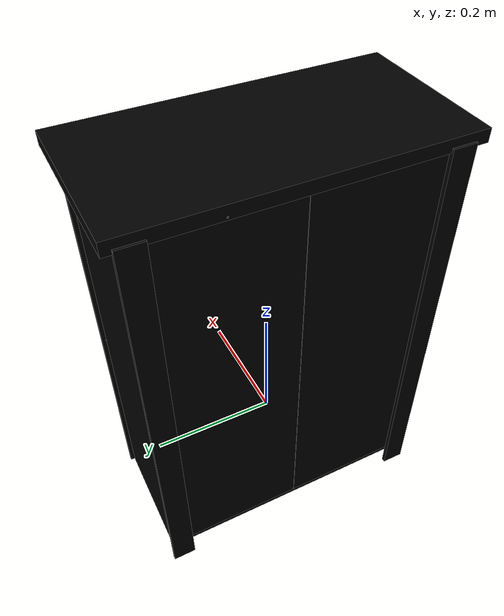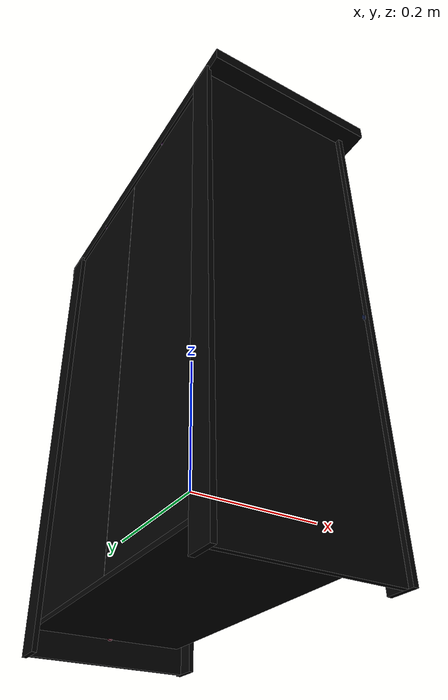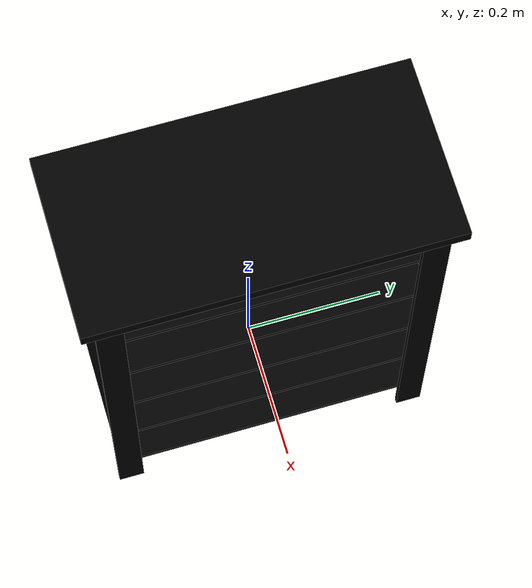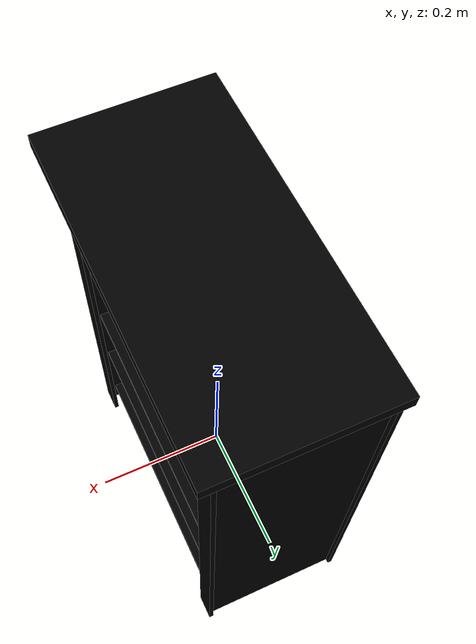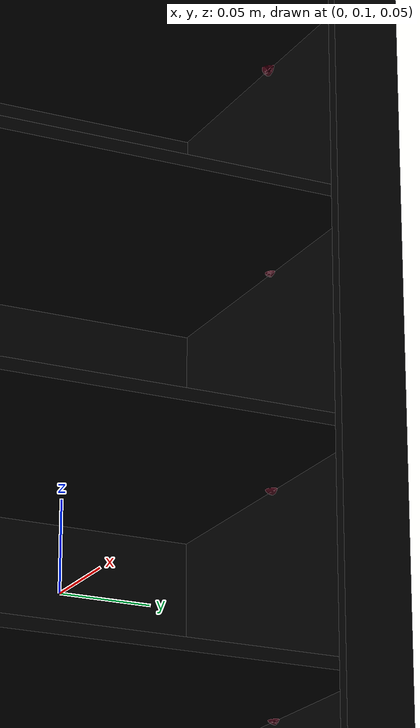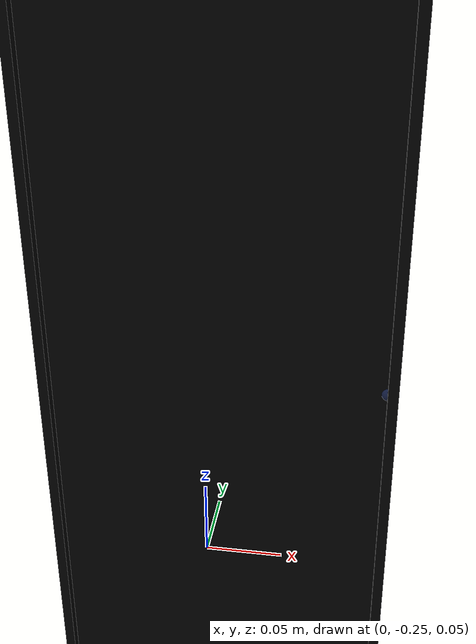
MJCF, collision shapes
<mujoco model="bookcase_grevback_0484">
    <asset>
        <mesh file="bookcase_grevback_0484/0.stl" name="part0" scale="0.0002664 0.0002664 0.0002664"/>
        <mesh file="bookcase_grevback_0484/9.stl" name="part9" scale="0.0002664 0.0002664 0.0002664"/>
        <mesh file="bookcase_grevback_0484/8.stl" name="part8" scale="0.0002664 0.0002664 0.0002664"/>
        <mesh file="bookcase_grevback_0484/7.stl" name="part7" scale="0.0002664 0.0002664 0.0002664"/>
        <mesh file="bookcase_grevback_0484/6.stl" name="part6" scale="0.0002664 0.0002664 0.0002664"/>
        <mesh file="bookcase_grevback_0484/5.stl" name="part5" scale="0.0002664 0.0002664 0.0002664"/>
        <mesh file="bookcase_grevback_0484/4.stl" name="part4" scale="0.0002664 0.0002664 0.0002664"/>
        <mesh file="bookcase_grevback_0484/3.stl" name="part3" scale="0.0002664 0.0002664 0.0002664"/>
        <mesh file="bookcase_grevback_0484/2.stl" name="part2" scale="0.0002664 0.0002664 0.0002664"/>
        <mesh file="bookcase_grevback_0484/13.stl" name="part13" scale="0.0002664 0.0002664 0.0002664"/>
        <mesh file="bookcase_grevback_0484/12.stl" name="part12" scale="0.0002664 0.0002664 0.0002664"/>
        <mesh file="bookcase_grevback_0484/11.stl" name="part11" scale="0.0002664 0.0002664 0.0002664"/>
        <mesh file="bookcase_grevback_0484/10.stl" name="part10" scale="0.0002664 0.0002664 0.0002664"/>
        <mesh file="bookcase_grevback_0484/1.stl" name="part1" scale="0.0002664 0.0002664 0.0002664"/>
    </asset>
    <equality>
        <weld active="false" body1="12_part12" body2="5_part5" solimp="1 1 0.5" solref="0.01 0.3"/>
        <weld active="false" body1="11_part11" body2="4_part4" solimp="1 1 0.5" solref="0.01 0.3"/>
        <weld active="false" body1="11_part11" body2="3_part3" solimp="1 1 0.5" solref="0.01 0.3"/>
        <weld active="false" body1="12_part12" body2="4_part4" solimp="1 1 0.5" solref="0.01 0.3"/>
        <weld active="false" body1="12_part12" body2="3_part3" solimp="1 1 0.5" solref="0.01 0.3"/>
        <weld active="false" body1="9_part9" body2="5_part5" solimp="1 1 0.5" solref="0.01 0.3"/>
        <weld active="false" body1="8_part8" body2="5_part5" solimp="1 1 0.5" solref="0.01 0.3"/>
        <weld active="false" body1="6_part6" body2="11_part11" solimp="1 1 0.5" solref="0.01 0.3"/>
        <weld active="false" body1="6_part6" body2="12_part12" solimp="1 1 0.5" solref="0.01 0.3"/>
        <weld active="false" body1="7_part3" body2="11_part11" solimp="1 1 0.5" solref="0.01 0.3"/>
        <weld active="false" body1="7_part3" body2="12_part12" solimp="1 1 0.5" solref="0.01 0.3"/>
        <weld active="false" body1="10_part10" body2="11_part11" solimp="1 1 0.5" solref="0.01 0.3"/>
        <weld active="false" body1="10_part10" body2="12_part12" solimp="1 1 0.5" solref="0.01 0.3"/>
        <weld active="false" body1="0_part0" body2="11_part11" solimp="1 1 0.5" solref="0.01 0.3"/>
        <weld active="false" body1="0_part0" body2="12_part12" solimp="1 1 0.5" solref="0.01 0.3"/>
        <weld active="false" body1="1_part1" body2="11_part11" solimp="1 1 0.5" solref="0.01 0.3"/>
        <weld active="false" body1="1_part1" body2="12_part12" solimp="1 1 0.5" solref="0.01 0.3"/>
        <weld active="false" body1="2_part2" body2="9_part9" solimp="1 1 0.5" solref="0.01 0.3"/>
        <weld active="false" body1="2_part2" body2="8_part8" solimp="1 1 0.5" solref="0.01 0.3"/>
        <weld active="false" body1="13_part13" body2="9_part9" solimp="1 1 0.5" solref="0.01 0.3"/>
        <weld active="false" body1="13_part13" body2="8_part8" solimp="1 1 0.5" solref="0.01 0.3"/>
        <weld active="false" body1="11_part11" body2="5_part5" solimp="1 1 0.5" solref="0.01 0.3"/>
    </equality>
    <worldbody>
        <body name="0_part0" pos="-0.0 0.0 5.328000000000001e-11" quat="1 0 0 0">
            <geom conaffinity="0" contype="0" density="0" mesh="part0" name="0_part0_mesh" pos="0.0 0.0 0.0"
                  rgba="0.82 0.71 0.55 1" type="mesh"/>
            <site name="0_part0_horizontal_radius_site" pos="-0.0 0.0 5.328000000000001e-11" quat="1 0 0 0"
                  rgba="0 0 0 0" size="0.005328"/>
            <site name="0_part0_top_site" pos="0.0 0.0 0.00338328527472" quat="1 0 0 0" rgba="0 0 0 0" size="0.005328"/>
            <site name="0_part0_bottom_site" pos="0.0 0.0 -0.0033832851948000005" quat="1 0 0 0" rgba="0 0 0 0"
                  size="0.005328"/>
            <site name="0_part0_corner_site8" pos="-0.10674248400000003 0.22245066650016004 0.00338328527472"
                  quat="1 0 0 0" rgba="0 0 0 0" size="0.005328"/>
            <site name="0_part0_corner_site7" pos="0.10674248400000003 0.22245066650016004 0.00338328527472"
                  quat="1 0 0 0" rgba="0 0 0 0" size="0.005328"/>
            <site name="0_part0_corner_site6" pos="0.10674248400000003 -0.22245066650016004 0.00338328527472"
                  quat="1 0 0 0" rgba="0 0 0 0" size="0.005328"/>
            <site name="0_part0_corner_site5" pos="-0.10674248400000003 -0.22245066650016004 0.00338328527472"
                  quat="1 0 0 0" rgba="0 0 0 0" size="0.005328"/>
            <site name="0_part0_corner_site4" pos="-0.10674248400000003 0.22245066650016004 -0.0033832851948000005"
                  quat="1 0 0 0" rgba="0 0 0 0" size="0.005328"/>
            <site name="0_part0_corner_site3" pos="0.10674248400000003 0.22245066650016004 -0.0033832851948000005"
                  quat="1 0 0 0" rgba="0 0 0 0" size="0.005328"/>
            <site name="0_part0_corner_site2" pos="0.10674248400000003 -0.22245066650016004 -0.0033832851948000005"
                  quat="1 0 0 0" rgba="0 0 0 0" size="0.005328"/>
            <site name="0_part0_corner_site1" pos="-0.10674248400000003 -0.22245066650016004 -0.0033832851948000005"
                  quat="1 0 0 0" rgba="0 0 0 0" size="0.005328"/>
            <geom density="50" name="noviz_collision_0_part0_0" pos="0.0 -1.3320000000000003e-08 -5.328000000000001e-09"
                  quat="1 0 0 0" rgba="0 0 0 0" size="0.10674248400000003 0.22245066000000002 0.0033832800000000007"
                  solref="0.001 1" type="box"/>
            <site name="shelf-wall,0,180,conn_site1"
                  pos="0.0013533120000000002 -0.22276368000000005 -0.0013852800000000002" quat="0.7071067 0.7071068 0 0"
                  rgba="0.9019 0.0980 0.2941 0.3" size="0.005328"/>
            <site name="shelf-wall,0,180,conn_site2" pos="0.0013533120000000002 0.22239072000000004 -0.0002664"
                  quat="0.7071067 -0.7071068 0 0" rgba="0.9019 0.0980 0.2941 0.3" size="0.005328"/>
        </body>
        <body name="13_part13" pos="-0.11147907600000001 -0.21737574650016 0.17187061880520002" quat="1 0 0 0">
            <geom conaffinity="0" contype="0" density="0" mesh="part9" name="13_part13_mesh" pos="0.0 0.0 0.0"
                  rgba="0.82 0.71 0.55 1" type="mesh"/>
            <site name="13_part13_horizontal_radius_site" pos="0.0 3.996e-10 0.0" quat="1 0 0 0" rgba="0 0 0 0"
                  size="0.005328"/>
            <site name="13_part13_top_site" pos="0.0 3.996e-10 0.338328" quat="1 0 0 0" rgba="0 0 0 0" size="0.005328"/>
            <site name="13_part13_bottom_site" pos="0.0 3.996e-10 -0.338328" quat="1 0 0 0" rgba="0 0 0 0"
                  size="0.005328"/>
            <site name="13_part13_corner_site8" pos="-0.0033832800000000007 0.018608040399600005 0.338328"
                  quat="1 0 0 0" rgba="0 0 0 0" size="0.005328"/>
            <site name="13_part13_corner_site7" pos="0.0033832800000000007 0.018608040399600005 0.338328" quat="1 0 0 0"
                  rgba="0 0 0 0" size="0.005328"/>
            <site name="13_part13_corner_site6" pos="0.0033832800000000007 -0.0186080396004 0.338328" quat="1 0 0 0"
                  rgba="0 0 0 0" size="0.005328"/>
            <site name="13_part13_corner_site5" pos="-0.0033832800000000007 -0.0186080396004 0.338328" quat="1 0 0 0"
                  rgba="0 0 0 0" size="0.005328"/>
            <site name="13_part13_corner_site4" pos="-0.0033832800000000007 0.018608040399600005 -0.338328"
                  quat="1 0 0 0" rgba="0 0 0 0" size="0.005328"/>
            <site name="13_part13_corner_site3" pos="0.0033832800000000007 0.018608040399600005 -0.338328"
                  quat="1 0 0 0" rgba="0 0 0 0" size="0.005328"/>
            <site name="13_part13_corner_site2" pos="0.0033832800000000007 -0.0186080396004 -0.338328" quat="1 0 0 0"
                  rgba="0 0 0 0" size="0.005328"/>
            <site name="13_part13_corner_site1" pos="-0.0033832800000000007 -0.0186080396004 -0.338328" quat="1 0 0 0"
                  rgba="0 0 0 0" size="0.005328"/>
            <geom density="50" name="noviz_collision_13_part13_0" pos="0.0 0.0 0.0" quat="1 0 0 0" rgba="0 0 0 0"
                  size="0.003383282664000001 0.018608034672000003 0.338328" solref="0.001 1" type="box"/>
            <site name="sideback-back,0,conn_site2"
                  pos="0.0023349906720000002 0.00025975065600000003 1.5984000000000003e-08"
                  quat="0.7071067 0 -0.7071068 0" rgba="0.2352 0.7058 0.2941 0.3" size="0.005328"/>
        </body>
        <body name="12_part12" pos="0.0027066240000000004 -0.22583394671328005 0.17187061880520002" quat="1 0 0 0">
            <geom conaffinity="0" contype="0" density="0" mesh="part8" name="12_part12_mesh" pos="0.0 0.0 0.0"
                  rgba="0.82 0.71 0.55 1" type="mesh"/>
            <site name="12_part12_horizontal_radius_site" pos="5.328000000000001e-11 0.0 0.0" quat="1 0 0 0"
                  rgba="0 0 0 0" size="0.005328"/>
            <site name="12_part12_top_site" pos="5.328000000000001e-11 0.0 0.338328" quat="1 0 0 0" rgba="0 0 0 0"
                  size="0.005328"/>
            <site name="12_part12_bottom_site" pos="5.328000000000001e-11 0.0 -0.338328" quat="1 0 0 0" rgba="0 0 0 0"
                  size="0.005328"/>
            <site name="12_part12_corner_site8" pos="-0.11080241994672002 0.0033832802131200006 0.338328" quat="1 0 0 0"
                  rgba="0 0 0 0" size="0.005328"/>
            <site name="12_part12_corner_site7" pos="0.11080242005328 0.0033832802131200006 0.338328" quat="1 0 0 0"
                  rgba="0 0 0 0" size="0.005328"/>
            <site name="12_part12_corner_site6" pos="0.11080242005328 -0.0033832802131200006 0.338328" quat="1 0 0 0"
                  rgba="0 0 0 0" size="0.005328"/>
            <site name="12_part12_corner_site5" pos="-0.11080241994672002 -0.0033832802131200006 0.338328"
                  quat="1 0 0 0" rgba="0 0 0 0" size="0.005328"/>
            <site name="12_part12_corner_site4" pos="-0.11080241994672002 0.0033832802131200006 -0.338328"
                  quat="1 0 0 0" rgba="0 0 0 0" size="0.005328"/>
            <site name="12_part12_corner_site3" pos="0.11080242005328 0.0033832802131200006 -0.338328" quat="1 0 0 0"
                  rgba="0 0 0 0" size="0.005328"/>
            <site name="12_part12_corner_site2" pos="0.11080242005328 -0.0033832802131200006 -0.338328" quat="1 0 0 0"
                  rgba="0 0 0 0" size="0.005328"/>
            <site name="12_part12_corner_site1" pos="-0.11080241994672002 -0.0033832802131200006 -0.338328"
                  quat="1 0 0 0" rgba="0 0 0 0" size="0.005328"/>
            <geom density="50" name="noviz_collision_12_part12_0" pos="0.0 0.0 0.0" quat="1 0 0 0" rgba="0 0 0 0"
                  size="0.11080242000000003 0.003383282664000001 0.338328" solref="0.001 1" type="box"/>
            <site name="wallleft-topleft,0,conn_site1"
                  pos="0.005074917336000001 -0.0021245346720000008 0.3384984960000001" quat="1 0 0 0"
                  rgba="1.0 0.8823 0.0980 0.3" size="0.005328"/>
            <site name="wall-shelf,0,180,conn_site5"
                  pos="-0.0013533120000000002 0.0032833826640000004 0.20428617600000007" quat="0.7071067 0.7071068 0 0"
                  rgba="0.9019 0.0980 0.2941 0.3" size="0.005328"/>
            <site name="wall-shelf,0,180,conn_site4" pos="-0.0013533120000000002 0.003336665328 0.079610976"
                  quat="0.7071067 0.7071068 0 0" rgba="0.9019 0.0980 0.2941 0.3" size="0.005328"/>
            <site name="wall-shelf,0,180,conn_site3"
                  pos="-0.0013533120000000002 0.0032833826640000004 -0.04639622400000001" quat="0.7071067 0.7071068 0 0"
                  rgba="0.9019 0.0980 0.2941 0.3" size="0.005328"/>
            <site name="wall-shelf,0,180,conn_site2"
                  pos="-0.0013533120000000002 0.0030702653280000004 -0.17325590400000002" quat="0.7071067 0.7071068 0 0"
                  rgba="0.9019 0.0980 0.2941 0.3" size="0.005328"/>
            <site name="wall-shelf,0,180,conn_site1"
                  pos="-0.0016916400000000003 0.0032833826640000004 -0.30147422400000007" quat="0.7071067 0.7071068 0 0"
                  rgba="0.9019 0.0980 0.2941 0.3" size="0.005328"/>
            <site name="wall-front,0,180,conn_site2"
                  pos="0.11155233600000002 -0.0006060493440000001 -0.0033832506960000002" quat="0.7071067 0 0.7071068 0"
                  rgba="0.2627 0.3882 0.8470 0.3" size="0.005328"/>
        </body>
        <body name="11_part11" pos="0.0027066240000000004 0.22583393349984004 0.17187061880520002" quat="1 0 0 0">
            <geom conaffinity="0" contype="0" density="0" mesh="part7" name="11_part11_mesh" pos="0.0 0.0 0.0"
                  rgba="0.82 0.71 0.55 1" type="mesh"/>
            <site name="11_part11_horizontal_radius_site" pos="5.328000000000001e-11 -0.0 0.0" quat="1 0 0 0"
                  rgba="0 0 0 0" size="0.005328"/>
            <site name="11_part11_top_site" pos="5.328000000000001e-11 0.0 0.338328" quat="1 0 0 0" rgba="0 0 0 0"
                  size="0.005328"/>
            <site name="11_part11_bottom_site" pos="5.328000000000001e-11 0.0 -0.338328" quat="1 0 0 0" rgba="0 0 0 0"
                  size="0.005328"/>
            <site name="11_part11_corner_site8" pos="-0.11080241994672002 0.0033832800000000007 0.338328" quat="1 0 0 0"
                  rgba="0 0 0 0" size="0.005328"/>
            <site name="11_part11_corner_site7" pos="0.11080242005328 0.0033832800000000007 0.338328" quat="1 0 0 0"
                  rgba="0 0 0 0" size="0.005328"/>
            <site name="11_part11_corner_site6" pos="0.11080242005328 -0.0033832800000000007 0.338328" quat="1 0 0 0"
                  rgba="0 0 0 0" size="0.005328"/>
            <site name="11_part11_corner_site5" pos="-0.11080241994672002 -0.0033832800000000007 0.338328"
                  quat="1 0 0 0" rgba="0 0 0 0" size="0.005328"/>
            <site name="11_part11_corner_site4" pos="-0.11080241994672002 0.0033832800000000007 -0.338328"
                  quat="1 0 0 0" rgba="0 0 0 0" size="0.005328"/>
            <site name="11_part11_corner_site3" pos="0.11080242005328 0.0033832800000000007 -0.338328" quat="1 0 0 0"
                  rgba="0 0 0 0" size="0.005328"/>
            <site name="11_part11_corner_site2" pos="0.11080242005328 -0.0033832800000000007 -0.338328" quat="1 0 0 0"
                  rgba="0 0 0 0" size="0.005328"/>
            <site name="11_part11_corner_site1" pos="-0.11080241994672002 -0.0033832800000000007 -0.338328"
                  quat="1 0 0 0" rgba="0 0 0 0" size="0.005328"/>
            <geom density="50" name="noviz_collision_11_part11_0" pos="0.0 0.0 0.0" quat="1 0 0 0" rgba="0 0 0 0"
                  size="0.11080242000000003 0.003383282664000001 0.338328" solref="0.001 1" type="box"/>
            <site name="wallright-topright,0,conn_site1"
                  pos="0.005074917336000001 0.00017983332000000003 0.3381788160000001" quat="1 0 0 0"
                  rgba="0.9607 0.5098 0.1921 0.3" size="0.005328"/>
            <site name="wall-shelf,0,180,conn_site9" pos="-0.0013533120000000002 -0.0028038493440000005 0.203273856"
                  quat="0.7071067 -0.7071068 0 0" rgba="0.9019 0.0980 0.2941 0.3" size="0.005328"/>
            <site name="wall-shelf,0,180,conn_site8" pos="-0.0013533120000000002 -0.00328336668 0.079877376"
                  quat="0.7071067 -0.7071068 0 0" rgba="0.9019 0.0980 0.2941 0.3" size="0.005328"/>
            <site name="wall-shelf,0,180,conn_site7"
                  pos="-0.0013533120000000002 -0.003603049344000001 -0.04655606400000001"
                  quat="0.7071067 -0.7071068 0 0" rgba="0.9019 0.0980 0.2941 0.3" size="0.005328"/>
            <site name="wall-shelf,0,180,conn_site6" pos="-0.0013533120000000002 -0.003443217336 -0.172137024"
                  quat="0.7071067 -0.7071068 0 0" rgba="0.9019 0.0980 0.2941 0.3" size="0.005328"/>
            <site name="wall-shelf,0,180,conn_site10"
                  pos="-0.0016916400000000003 -0.0026973000000000006 -0.30131438400000005"
                  quat="0.7071067 -0.7071068 0 0" rgba="0.9019 0.0980 0.2941 0.3" size="0.005328"/>
            <site name="wall-front,0,180,conn_site1" pos="0.11149905600000001 -0.000193134672 -0.0033832506960000002"
                  quat="0.7071067 0 0.7071068 0" rgba="0.2627 0.3882 0.8470 0.3" size="0.005328"/>
        </body>
        <body name="10_part10" pos="-0.00067665682584 0.0 -0.1292413011948" quat="1 0 0 0">
            <geom conaffinity="0" contype="0" density="0" mesh="part6" name="10_part10_mesh" pos="0.0 0.0 0.0"
                  rgba="0.82 0.71 0.55 1" type="mesh"/>
            <site name="10_part10_horizontal_radius_site" pos="-7.992e-10 0.0 0.0" quat="1 0 0 0" rgba="0 0 0 0"
                  size="0.005328"/>
            <site name="10_part10_top_site" pos="-7.725600000000001e-10 0.0 0.0033832800000000007" quat="1 0 0 0"
                  rgba="0 0 0 0" size="0.005328"/>
            <site name="10_part10_bottom_site" pos="-7.725600000000001e-10 0.0 -0.0033832800000000007" quat="1 0 0 0"
                  rgba="0 0 0 0" size="0.005328"/>
            <site name="10_part10_corner_site8" pos="-0.10741914162504002 0.22245066650016004 0.0033832800000000007"
                  quat="1 0 0 0" rgba="0 0 0 0" size="0.005328"/>
            <site name="10_part10_corner_site7" pos="0.10741914005328002 0.22245066650016004 0.0033832800000000007"
                  quat="1 0 0 0" rgba="0 0 0 0" size="0.005328"/>
            <site name="10_part10_corner_site6" pos="0.10741914005328002 -0.22245066650016004 0.0033832800000000007"
                  quat="1 0 0 0" rgba="0 0 0 0" size="0.005328"/>
            <site name="10_part10_corner_site5" pos="-0.10741914162504002 -0.22245066650016004 0.0033832800000000007"
                  quat="1 0 0 0" rgba="0 0 0 0" size="0.005328"/>
            <site name="10_part10_corner_site4" pos="-0.10741914162504002 0.22245066650016004 -0.0033832800000000007"
                  quat="1 0 0 0" rgba="0 0 0 0" size="0.005328"/>
            <site name="10_part10_corner_site3" pos="0.10741914005328002 0.22245066650016004 -0.0033832800000000007"
                  quat="1 0 0 0" rgba="0 0 0 0" size="0.005328"/>
            <site name="10_part10_corner_site2" pos="0.10741914005328002 -0.22245066650016004 -0.0033832800000000007"
                  quat="1 0 0 0" rgba="0 0 0 0" size="0.005328"/>
            <site name="10_part10_corner_site1" pos="-0.10741914162504002 -0.22245066650016004 -0.0033832800000000007"
                  quat="1 0 0 0" rgba="0 0 0 0" size="0.005328"/>
            <geom density="50" name="noviz_collision_10_part10_0" pos="0.0 -1.3320000000000003e-08 0.0" quat="1 0 0 0"
                  rgba="0 0 0 0" size="0.10741914000000002 0.22245066000000002 0.003383282664000001" solref="0.001 1"
                  type="box"/>
            <site name="shelf-wall,0,180,conn_site3"
                  pos="0.0016916400000000003 -0.22255056000000006 -0.0003623013360000001" quat="0.7071067 0.7071068 0 0"
                  rgba="0.9019 0.0980 0.2941 0.3" size="0.005328"/>
            <site name="shelf-wall,0,180,conn_site4"
                  pos="0.0016916400000000003 0.22313664000000002 -0.00020245867200000003"
                  quat="0.7071067 -0.7071068 0 0" rgba="0.9019 0.0980 0.2941 0.3" size="0.005328"/>
        </body>
        <body name="9_part9" pos="-0.10741913986680002 -0.11139449986080002 0.19217029797936003" quat="1 0 0 0">
            <geom conaffinity="0" contype="0" density="0" mesh="part5" name="9_part9_mesh" pos="0.0 0.0 0.0"
                  rgba="0.82 0.71 0.55 1" type="mesh"/>
            <site name="9_part9_horizontal_radius_site" pos="0.0 0.0 0.0" quat="1 0 0 0" rgba="0 0 0 0"
                  size="0.005328"/>
            <site name="9_part9_top_site" pos="0.0 0.0 0.31802833300032" quat="1 0 0 0" rgba="0 0 0 0" size="0.005328"/>
            <site name="9_part9_bottom_site" pos="0.0 0.0 -0.31802833300032" quat="1 0 0 0" rgba="0 0 0 0"
                  size="0.005328"/>
            <site name="9_part9_corner_site8" pos="-0.00067665623976 0.11105616663936002 0.31802833300032"
                  quat="1 0 0 0" rgba="0 0 0 0" size="0.005328"/>
            <site name="9_part9_corner_site7" pos="0.00067665623976 0.11105616663936002 0.31802833300032" quat="1 0 0 0"
                  rgba="0 0 0 0" size="0.005328"/>
            <site name="9_part9_corner_site6" pos="0.00067665623976 -0.11105616663936002 0.31802833300032"
                  quat="1 0 0 0" rgba="0 0 0 0" size="0.005328"/>
            <site name="9_part9_corner_site5" pos="-0.00067665623976 -0.11105616663936002 0.31802833300032"
                  quat="1 0 0 0" rgba="0 0 0 0" size="0.005328"/>
            <site name="9_part9_corner_site4" pos="-0.00067665623976 0.11105616663936002 -0.31802833300032"
                  quat="1 0 0 0" rgba="0 0 0 0" size="0.005328"/>
            <site name="9_part9_corner_site3" pos="0.00067665623976 0.11105616663936002 -0.31802833300032"
                  quat="1 0 0 0" rgba="0 0 0 0" size="0.005328"/>
            <site name="9_part9_corner_site2" pos="0.00067665623976 -0.11105616663936002 -0.31802833300032"
                  quat="1 0 0 0" rgba="0 0 0 0" size="0.005328"/>
            <site name="9_part9_corner_site1" pos="-0.00067665623976 -0.11105616663936002 -0.31802833300032"
                  quat="1 0 0 0" rgba="0 0 0 0" size="0.005328"/>
            <geom density="50" name="noviz_collision_9_part9_0" pos="0.0 0.0 0.0" quat="1 0 0 0" rgba="0 0 0 0"
                  size="0.0006766586640000001 0.11105616600000001 0.31802832000000003" solref="0.001 1" type="box"/>
            <site name="back-top,0,180,conn_site1" pos="0.0019247426640000003 0.016023299328000003 0.31425609600000004"
                  quat="1 0 0 0" rgba="0.5686 0.1176 0.7058 0.3" size="0.005328"/>
            <site name="back-sideback,0,conn_site2"
                  pos="-0.0017249426640000003 -0.10572150600000002 -0.020299666680000005"
                  quat="0.7071067 0 -0.7071068 0" rgba="0.2352 0.7058 0.2941 0.3" size="0.005328"/>
        </body>
        <body name="8_part8" pos="-0.10741913986680002 0.11139449173560001 0.19217029797936003" quat="1 0 0 0">
            <geom conaffinity="0" contype="0" density="0" mesh="part4" name="8_part8_mesh" pos="0.0 0.0 0.0"
                  rgba="0.82 0.71 0.55 1" type="mesh"/>
            <site name="8_part8_horizontal_radius_site" pos="0.0 0.0 0.0" quat="1 0 0 0" rgba="0 0 0 0"
                  size="0.005328"/>
            <site name="8_part8_top_site" pos="0.0 0.0 0.31802833300032" quat="1 0 0 0" rgba="0 0 0 0" size="0.005328"/>
            <site name="8_part8_bottom_site" pos="0.0 0.0 -0.31802833300032" quat="1 0 0 0" rgba="0 0 0 0"
                  size="0.005328"/>
            <site name="8_part8_corner_site8" pos="-0.00067665623976 0.1110561747912 0.31802833300032" quat="1 0 0 0"
                  rgba="0 0 0 0" size="0.005328"/>
            <site name="8_part8_corner_site7" pos="0.00067665623976 0.1110561747912 0.31802833300032" quat="1 0 0 0"
                  rgba="0 0 0 0" size="0.005328"/>
            <site name="8_part8_corner_site6" pos="0.00067665623976 -0.1110561747912 0.31802833300032" quat="1 0 0 0"
                  rgba="0 0 0 0" size="0.005328"/>
            <site name="8_part8_corner_site5" pos="-0.00067665623976 -0.1110561747912 0.31802833300032" quat="1 0 0 0"
                  rgba="0 0 0 0" size="0.005328"/>
            <site name="8_part8_corner_site4" pos="-0.00067665623976 0.1110561747912 -0.31802833300032" quat="1 0 0 0"
                  rgba="0 0 0 0" size="0.005328"/>
            <site name="8_part8_corner_site3" pos="0.00067665623976 0.1110561747912 -0.31802833300032" quat="1 0 0 0"
                  rgba="0 0 0 0" size="0.005328"/>
            <site name="8_part8_corner_site2" pos="0.00067665623976 -0.1110561747912 -0.31802833300032" quat="1 0 0 0"
                  rgba="0 0 0 0" size="0.005328"/>
            <site name="8_part8_corner_site1" pos="-0.00067665623976 -0.1110561747912 -0.31802833300032" quat="1 0 0 0"
                  rgba="0 0 0 0" size="0.005328"/>
            <geom density="50" name="noviz_collision_8_part8_0" pos="0.0 -7.992000000000001e-09 0.0" quat="1 0 0 0"
                  rgba="0 0 0 0" size="0.0006766586640000001 0.11105616600000001 0.31802832000000003" solref="0.001 1"
                  type="box"/>
            <site name="back-top,0,180,conn_site2" pos="0.0008591426640000002 -0.005633691336000001 0.31532169600000004"
                  quat="1 0 0 0" rgba="0.5686 0.1176 0.7058 0.3" size="0.005328"/>
            <site name="back-sideback,0,conn_site1"
                  pos="-0.0015384573360000002 0.10998390600000002 -0.016399584000000005" quat="0.7071067 0 -0.7071068 0"
                  rgba="0.2352 0.7058 0.2941 0.3" size="0.005328"/>
        </body>
        <body name="7_part3" pos="-0.0 0.0 0.37757405716416" quat="1 0 0 0">
            <geom conaffinity="0" contype="0" density="0" mesh="part3" name="7_part3_mesh" pos="0.0 0.0 0.0"
                  rgba="0.82 0.71 0.55 1" type="mesh"/>
            <site name="7_part3_horizontal_radius_site" pos="-0.0 0.0 5.328000000000001e-11" quat="1 0 0 0"
                  rgba="0 0 0 0" size="0.005328"/>
            <site name="7_part3_top_site" pos="0.0 0.0 0.0033832944388800003" quat="1 0 0 0" rgba="0 0 0 0"
                  size="0.005328"/>
            <site name="7_part3_bottom_site" pos="0.0 0.0 -0.00338329430568" quat="1 0 0 0" rgba="0 0 0 0"
                  size="0.005328"/>
            <site name="7_part3_corner_site8" pos="-0.10674248400000003 0.22245066650016004 0.0033832944388800003"
                  quat="1 0 0 0" rgba="0 0 0 0" size="0.005328"/>
            <site name="7_part3_corner_site7" pos="0.10674248400000003 0.22245066650016004 0.0033832944388800003"
                  quat="1 0 0 0" rgba="0 0 0 0" size="0.005328"/>
            <site name="7_part3_corner_site6" pos="0.10674248400000003 -0.22245066650016004 0.0033832944388800003"
                  quat="1 0 0 0" rgba="0 0 0 0" size="0.005328"/>
            <site name="7_part3_corner_site5" pos="-0.10674248400000003 -0.22245066650016004 0.0033832944388800003"
                  quat="1 0 0 0" rgba="0 0 0 0" size="0.005328"/>
            <site name="7_part3_corner_site4" pos="-0.10674248400000003 0.22245066650016004 -0.00338329430568"
                  quat="1 0 0 0" rgba="0 0 0 0" size="0.005328"/>
            <site name="7_part3_corner_site3" pos="0.10674248400000003 0.22245066650016004 -0.00338329430568"
                  quat="1 0 0 0" rgba="0 0 0 0" size="0.005328"/>
            <site name="7_part3_corner_site2" pos="0.10674248400000003 -0.22245066650016004 -0.00338329430568"
                  quat="1 0 0 0" rgba="0 0 0 0" size="0.005328"/>
            <site name="7_part3_corner_site1" pos="-0.10674248400000003 -0.22245066650016004 -0.00338329430568"
                  quat="1 0 0 0" rgba="0 0 0 0" size="0.005328"/>
            <geom density="50" name="noviz_collision_7_part3_0"
                  pos="0.0 -1.3320000000000003e-08 -3.1968000000000005e-08" quat="1 0 0 0" rgba="0 0 0 0"
                  size="0.10674248400000003 0.22245066000000002 0.00338326668" solref="0.001 1" type="box"/>
            <site name="shelf-wall,0,180,conn_site5"
                  pos="0.0013533120000000002 -0.22255056000000006 -0.0014172666480000004" quat="0.7071067 0.7071068 0 0"
                  rgba="0.9019 0.0980 0.2941 0.3" size="0.005328"/>
            <site name="shelf-wall,0,180,conn_site6"
                  pos="0.0013533120000000002 0.22303008000000002 -0.0024295999680000006" quat="0.7071067 -0.7071068 0 0"
                  rgba="0.9019 0.0980 0.2941 0.3" size="0.005328"/>
        </body>
        <body name="6_part6" pos="-0.0 0.0 0.25171602680520005" quat="1 0 0 0">
            <geom conaffinity="0" contype="0" density="0" mesh="part2" name="6_part6_mesh" pos="0.0 0.0 0.0"
                  rgba="0.82 0.71 0.55 1" type="mesh"/>
            <site name="6_part6_horizontal_radius_site" pos="-0.0 0.0 0.0" quat="1 0 0 0" rgba="0 0 0 0"
                  size="0.005328"/>
            <site name="6_part6_top_site" pos="0.0 0.0 0.0033832800000000007" quat="1 0 0 0" rgba="0 0 0 0"
                  size="0.005328"/>
            <site name="6_part6_bottom_site" pos="0.0 0.0 -0.0033832800000000007" quat="1 0 0 0" rgba="0 0 0 0"
                  size="0.005328"/>
            <site name="6_part6_corner_site8" pos="-0.10674248400000003 0.22245066650016004 0.0033832800000000007"
                  quat="1 0 0 0" rgba="0 0 0 0" size="0.005328"/>
            <site name="6_part6_corner_site7" pos="0.10674248400000003 0.22245066650016004 0.0033832800000000007"
                  quat="1 0 0 0" rgba="0 0 0 0" size="0.005328"/>
            <site name="6_part6_corner_site6" pos="0.10674248400000003 -0.22245066650016004 0.0033832800000000007"
                  quat="1 0 0 0" rgba="0 0 0 0" size="0.005328"/>
            <site name="6_part6_corner_site5" pos="-0.10674248400000003 -0.22245066650016004 0.0033832800000000007"
                  quat="1 0 0 0" rgba="0 0 0 0" size="0.005328"/>
            <site name="6_part6_corner_site4" pos="-0.10674248400000003 0.22245066650016004 -0.0033832800000000007"
                  quat="1 0 0 0" rgba="0 0 0 0" size="0.005328"/>
            <site name="6_part6_corner_site3" pos="0.10674248400000003 0.22245066650016004 -0.0033832800000000007"
                  quat="1 0 0 0" rgba="0 0 0 0" size="0.005328"/>
            <site name="6_part6_corner_site2" pos="0.10674248400000003 -0.22245066650016004 -0.0033832800000000007"
                  quat="1 0 0 0" rgba="0 0 0 0" size="0.005328"/>
            <site name="6_part6_corner_site1" pos="-0.10674248400000003 -0.22245066650016004 -0.0033832800000000007"
                  quat="1 0 0 0" rgba="0 0 0 0" size="0.005328"/>
            <geom density="50" name="noviz_collision_6_part6_0" pos="0.0 -1.3320000000000003e-08 0.0" quat="1 0 0 0"
                  rgba="0 0 0 0" size="0.10674248400000003 0.22245066000000002 0.003383282664000001" solref="0.001 1"
                  type="box"/>
            <site name="shelf-wall,0,180,conn_site7"
                  pos="0.0013533120000000002 -0.22249728000000002 -0.00023443200000000002"
                  quat="0.7071067 0.7071068 0 0" rgba="0.9019 0.0980 0.2941 0.3" size="0.005328"/>
            <site name="shelf-wall,0,180,conn_site8" pos="0.0013533120000000002 0.22255056000000006 3.1968e-05"
                  quat="0.7071067 -0.7071068 0 0" rgba="0.9019 0.0980 0.2941 0.3" size="0.005328"/>
        </body>
        <body name="5_part5" pos="0.012856460749920001 -0.00338328325008 0.5135819183056801" quat="1 0 0 0">
            <geom conaffinity="0" contype="0" density="0" mesh="part13" name="5_part5_mesh" pos="0.0 0.0 0.0"
                  rgba="0.82 0.71 0.55 1" type="mesh"/>
            <site name="5_part5_horizontal_radius_site" pos="0.0 0.0 0.0" quat="1 0 0 0" rgba="0 0 0 0"
                  size="0.005328"/>
            <site name="5_part5_top_site" pos="0.0 0.0 0.010149833499840001" quat="1 0 0 0" rgba="0 0 0 0"
                  size="0.005328"/>
            <site name="5_part5_bottom_site" pos="0.0 0.0 -0.010149833499840001" quat="1 0 0 0" rgba="0 0 0 0"
                  size="0.005328"/>
            <site name="5_part5_corner_site8" pos="-0.12771881674992 0.25290018325008 0.010149833499840001"
                  quat="1 0 0 0" rgba="0 0 0 0" size="0.005328"/>
            <site name="5_part5_corner_site7" pos="0.12771881674992 0.25290018325008 0.010149833499840001"
                  quat="1 0 0 0" rgba="0 0 0 0" size="0.005328"/>
            <site name="5_part5_corner_site6" pos="0.12771881674992 -0.25290018325008 0.010149833499840001"
                  quat="1 0 0 0" rgba="0 0 0 0" size="0.005328"/>
            <site name="5_part5_corner_site5" pos="-0.12771881674992 -0.25290018325008 0.010149833499840001"
                  quat="1 0 0 0" rgba="0 0 0 0" size="0.005328"/>
            <site name="5_part5_corner_site4" pos="-0.12771881674992 0.25290018325008 -0.010149833499840001"
                  quat="1 0 0 0" rgba="0 0 0 0" size="0.005328"/>
            <site name="5_part5_corner_site3" pos="0.12771881674992 0.25290018325008 -0.010149833499840001"
                  quat="1 0 0 0" rgba="0 0 0 0" size="0.005328"/>
            <site name="5_part5_corner_site2" pos="0.12771881674992 -0.25290018325008 -0.010149833499840001"
                  quat="1 0 0 0" rgba="0 0 0 0" size="0.005328"/>
            <site name="5_part5_corner_site1" pos="-0.12771881674992 -0.25290018325008 -0.010149833499840001"
                  quat="1 0 0 0" rgba="0 0 0 0" size="0.005328"/>
            <geom density="50" name="noviz_collision_5_part5_0"
                  pos="0.002061938664 7.992000000000001e-09 2.4649992000000004e-05" quat="1 0 0 0" rgba="0 0 0 0"
                  size="0.12654 0.2529001800000001 0.010174482000000002" solref="0.001 1" type="box"/>
            <site name="topleft-wallleft,0,conn_site1" pos="-0.005074917336000001 -0.2245752 -0.0032127999840000005"
                  quat="1 0 0 0" rgba="1.0 0.8823 0.0980 0.3" size="0.005328"/>
            <site name="topright-wallright,0,conn_site2"
                  pos="-0.005074917336000001 0.22939704000000005 -0.0035324986320000003" quat="1 0 0 0"
                  rgba="0.9607 0.5098 0.1921 0.3" size="0.005328"/>
            <site name="top-back,0,180,conn_site2" pos="-0.11941646400000001 0.10914408 -0.006089933304000001"
                  quat="1 0 0 0" rgba="0.5686 0.1176 0.7058 0.3" size="0.005328"/>
            <site name="top-back,0,180,conn_site1" pos="-0.11835086400000001 -0.09198792 -0.007155533304000001"
                  quat="1 0 0 0" rgba="0.5686 0.1176 0.7058 0.3" size="0.005328"/>
        </body>
        <body name="4_part4" pos="0.11689232725008002 -0.21737574650016 0.16848735180552002" quat="1 0 0 0">
            <geom conaffinity="0" contype="0" density="0" mesh="part12" name="4_part4_mesh" pos="0.0 0.0 0.0"
                  rgba="0.82 0.71 0.55 1" type="mesh"/>
            <site name="4_part4_horizontal_radius_site" pos="0.0 3.996e-10 -0.0" quat="1 0 0 0" rgba="0 0 0 0"
                  size="0.005328"/>
            <site name="4_part4_top_site" pos="0.0 3.996e-10 0.33494473300032007" quat="1 0 0 0" rgba="0 0 0 0"
                  size="0.005328"/>
            <site name="4_part4_bottom_site" pos="0.0 3.996e-10 -0.33494473300032007" quat="1 0 0 0" rgba="0 0 0 0"
                  size="0.005328"/>
            <site name="4_part4_corner_site8" pos="-0.00338328325008 0.018608040399600005 0.33494473300032007"
                  quat="1 0 0 0" rgba="0 0 0 0" size="0.005328"/>
            <site name="4_part4_corner_site7" pos="0.00338328325008 0.018608040399600005 0.33494473300032007"
                  quat="1 0 0 0" rgba="0 0 0 0" size="0.005328"/>
            <site name="4_part4_corner_site6" pos="0.00338328325008 -0.0186080396004 0.33494473300032007" quat="1 0 0 0"
                  rgba="0 0 0 0" size="0.005328"/>
            <site name="4_part4_corner_site5" pos="-0.00338328325008 -0.0186080396004 0.33494473300032007"
                  quat="1 0 0 0" rgba="0 0 0 0" size="0.005328"/>
            <site name="4_part4_corner_site4" pos="-0.00338328325008 0.018608040399600005 -0.33494473300032007"
                  quat="1 0 0 0" rgba="0 0 0 0" size="0.005328"/>
            <site name="4_part4_corner_site3" pos="0.00338328325008 0.018608040399600005 -0.33494473300032007"
                  quat="1 0 0 0" rgba="0 0 0 0" size="0.005328"/>
            <site name="4_part4_corner_site2" pos="0.00338328325008 -0.0186080396004 -0.33494473300032007"
                  quat="1 0 0 0" rgba="0 0 0 0" size="0.005328"/>
            <site name="4_part4_corner_site1" pos="-0.00338328325008 -0.0186080396004 -0.33494473300032007"
                  quat="1 0 0 0" rgba="0 0 0 0" size="0.005328"/>
            <geom density="50" name="noviz_collision_4_part4_0" pos="0.0 0.0 -1.5984000000000003e-08" quat="1 0 0 0"
                  rgba="0 0 0 0" size="0.003383282664000001 0.018608034672000003 0.3349447200000001" solref="0.001 1"
                  type="box"/>
            <site name="front-wall,0,180,conn_site2" pos="-0.002633366664 -0.009064249344 1.5984000000000003e-08"
                  quat="0.7071067 0 0.7071068 0" rgba="0.2627 0.3882 0.8470 0.3" size="0.005328"/>
        </body>
        <body name="3_part3" pos="0.11689232725008002 0.21737573349984005 0.16848735180552002" quat="1 0 0 0">
            <geom conaffinity="0" contype="0" density="0" mesh="part11" name="3_part3_mesh" pos="0.0 0.0 0.0"
                  rgba="0.82 0.71 0.55 1" type="mesh"/>
            <site name="3_part3_horizontal_radius_site" pos="0.0 0.0 -0.0" quat="1 0 0 0" rgba="0 0 0 0"
                  size="0.005328"/>
            <site name="3_part3_top_site" pos="0.0 0.0 0.33494473300032007" quat="1 0 0 0" rgba="0 0 0 0"
                  size="0.005328"/>
            <site name="3_part3_bottom_site" pos="0.0 0.0 -0.33494473300032007" quat="1 0 0 0" rgba="0 0 0 0"
                  size="0.005328"/>
            <site name="3_part3_corner_site8" pos="-0.00338328325008 0.018608040000000003 0.33494473300032007"
                  quat="1 0 0 0" rgba="0 0 0 0" size="0.005328"/>
            <site name="3_part3_corner_site7" pos="0.00338328325008 0.018608040000000003 0.33494473300032007"
                  quat="1 0 0 0" rgba="0 0 0 0" size="0.005328"/>
            <site name="3_part3_corner_site6" pos="0.00338328325008 -0.018608040000000003 0.33494473300032007"
                  quat="1 0 0 0" rgba="0 0 0 0" size="0.005328"/>
            <site name="3_part3_corner_site5" pos="-0.00338328325008 -0.018608040000000003 0.33494473300032007"
                  quat="1 0 0 0" rgba="0 0 0 0" size="0.005328"/>
            <site name="3_part3_corner_site4" pos="-0.00338328325008 0.018608040000000003 -0.33494473300032007"
                  quat="1 0 0 0" rgba="0 0 0 0" size="0.005328"/>
            <site name="3_part3_corner_site3" pos="0.00338328325008 0.018608040000000003 -0.33494473300032007"
                  quat="1 0 0 0" rgba="0 0 0 0" size="0.005328"/>
            <site name="3_part3_corner_site2" pos="0.00338328325008 -0.018608040000000003 -0.33494473300032007"
                  quat="1 0 0 0" rgba="0 0 0 0" size="0.005328"/>
            <site name="3_part3_corner_site1" pos="-0.00338328325008 -0.018608040000000003 -0.33494473300032007"
                  quat="1 0 0 0" rgba="0 0 0 0" size="0.005328"/>
            <geom density="50" name="noviz_collision_3_part3_0" pos="0.0 0.0 -1.5984000000000003e-08" quat="1 0 0 0"
                  rgba="0 0 0 0" size="0.003383282664000001 0.018608034672000003 0.3349447200000001" solref="0.001 1"
                  type="box"/>
            <site name="front-wall,0,180,conn_site1" pos="-0.0026866413360000004 0.008265065328 1.5984000000000003e-08"
                  quat="0.7071067 0 0.7071068 0" rgba="0.2627 0.3882 0.8470 0.3" size="0.005328"/>
        </body>
        <body name="2_part2" pos="-0.11147907600000001 0.21737573349984005 0.17187061880520002" quat="1 0 0 0">
            <geom conaffinity="0" contype="0" density="0" mesh="part10" name="2_part2_mesh" pos="0.0 0.0 0.0"
                  rgba="0.82 0.71 0.55 1" type="mesh"/>
            <site name="2_part2_horizontal_radius_site" pos="0.0 -0.0 0.0" quat="1 0 0 0" rgba="0 0 0 0"
                  size="0.005328"/>
            <site name="2_part2_top_site" pos="0.0 0.0 0.338328" quat="1 0 0 0" rgba="0 0 0 0" size="0.005328"/>
            <site name="2_part2_bottom_site" pos="0.0 0.0 -0.338328" quat="1 0 0 0" rgba="0 0 0 0" size="0.005328"/>
            <site name="2_part2_corner_site8" pos="-0.0033832800000000007 0.018608040000000003 0.338328" quat="1 0 0 0"
                  rgba="0 0 0 0" size="0.005328"/>
            <site name="2_part2_corner_site7" pos="0.0033832800000000007 0.018608040000000003 0.338328" quat="1 0 0 0"
                  rgba="0 0 0 0" size="0.005328"/>
            <site name="2_part2_corner_site6" pos="0.0033832800000000007 -0.018608040000000003 0.338328" quat="1 0 0 0"
                  rgba="0 0 0 0" size="0.005328"/>
            <site name="2_part2_corner_site5" pos="-0.0033832800000000007 -0.018608040000000003 0.338328" quat="1 0 0 0"
                  rgba="0 0 0 0" size="0.005328"/>
            <site name="2_part2_corner_site4" pos="-0.0033832800000000007 0.018608040000000003 -0.338328" quat="1 0 0 0"
                  rgba="0 0 0 0" size="0.005328"/>
            <site name="2_part2_corner_site3" pos="0.0033832800000000007 0.018608040000000003 -0.338328" quat="1 0 0 0"
                  rgba="0 0 0 0" size="0.005328"/>
            <site name="2_part2_corner_site2" pos="0.0033832800000000007 -0.018608040000000003 -0.338328" quat="1 0 0 0"
                  rgba="0 0 0 0" size="0.005328"/>
            <site name="2_part2_corner_site1" pos="-0.0033832800000000007 -0.018608040000000003 -0.338328"
                  quat="1 0 0 0" rgba="0 0 0 0" size="0.005328"/>
            <geom density="50" name="noviz_collision_2_part2_0" pos="0.0 0.0 0.0" quat="1 0 0 0" rgba="0 0 0 0"
                  size="0.003383282664000001 0.018608034672000003 0.338328" solref="0.001 1" type="box"/>
            <site name="sideback-back,0,conn_site1" pos="0.002521476 0.004002665328 0.0039000986640000007"
                  quat="0.7071067 0 -0.7071068 0" rgba="0.2352 0.7058 0.2941 0.3" size="0.005328"/>
        </body>
        <body name="1_part1" pos="-0.0 0.0 0.1258580108052" quat="1 0 0 0">
            <geom conaffinity="0" contype="0" density="0" mesh="part1" name="1_part1_mesh" pos="0.0 0.0 0.0"
                  rgba="0.82 0.71 0.55 1" type="mesh"/>
            <site name="1_part1_horizontal_radius_site" pos="-0.0 0.0 0.0" quat="1 0 0 0" rgba="0 0 0 0"
                  size="0.005328"/>
            <site name="1_part1_top_site" pos="0.0 0.0 0.0033832800000000007" quat="1 0 0 0" rgba="0 0 0 0"
                  size="0.005328"/>
            <site name="1_part1_bottom_site" pos="0.0 0.0 -0.0033832800000000007" quat="1 0 0 0" rgba="0 0 0 0"
                  size="0.005328"/>
            <site name="1_part1_corner_site8" pos="-0.10674248400000003 0.22245066650016004 0.0033832800000000007"
                  quat="1 0 0 0" rgba="0 0 0 0" size="0.005328"/>
            <site name="1_part1_corner_site7" pos="0.10674248400000003 0.22245066650016004 0.0033832800000000007"
                  quat="1 0 0 0" rgba="0 0 0 0" size="0.005328"/>
            <site name="1_part1_corner_site6" pos="0.10674248400000003 -0.22245066650016004 0.0033832800000000007"
                  quat="1 0 0 0" rgba="0 0 0 0" size="0.005328"/>
            <site name="1_part1_corner_site5" pos="-0.10674248400000003 -0.22245066650016004 0.0033832800000000007"
                  quat="1 0 0 0" rgba="0 0 0 0" size="0.005328"/>
            <site name="1_part1_corner_site4" pos="-0.10674248400000003 0.22245066650016004 -0.0033832800000000007"
                  quat="1 0 0 0" rgba="0 0 0 0" size="0.005328"/>
            <site name="1_part1_corner_site3" pos="0.10674248400000003 0.22245066650016004 -0.0033832800000000007"
                  quat="1 0 0 0" rgba="0 0 0 0" size="0.005328"/>
            <site name="1_part1_corner_site2" pos="0.10674248400000003 -0.22245066650016004 -0.0033832800000000007"
                  quat="1 0 0 0" rgba="0 0 0 0" size="0.005328"/>
            <site name="1_part1_corner_site1" pos="-0.10674248400000003 -0.22245066650016004 -0.0033832800000000007"
                  quat="1 0 0 0" rgba="0 0 0 0" size="0.005328"/>
            <geom density="50" name="noviz_collision_1_part1_0" pos="0.0 -1.3320000000000003e-08 0.0" quat="1 0 0 0"
                  rgba="0 0 0 0" size="0.10674248400000003 0.22245066000000002 0.0033832746720000003" solref="0.001 1"
                  type="box"/>
            <site name="shelf-wall,0,180,conn_site9"
                  pos="0.0013533120000000002 -0.22255056000000006 -0.0003836080080000001" quat="0.7071067 0.7071068 0 0"
                  rgba="0.9019 0.0980 0.2941 0.3" size="0.005328"/>
            <site name="shelf-wall,0,180,conn_site10" pos="0.0013533120000000002 0.22223088000000005 -0.000543450672"
                  quat="0.7071067 -0.7071068 0 0" rgba="0.9019 0.0980 0.2941 0.3" size="0.005328"/>
        </body>
    </worldbody>
    <actuator/>
    <sensor/>
    <contact/>
    <default/>
</mujoco>
